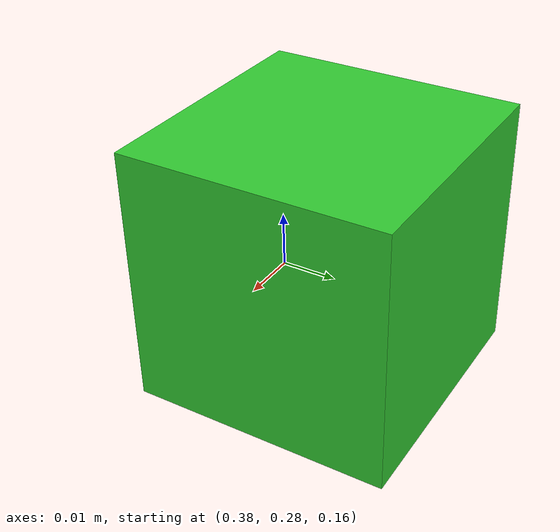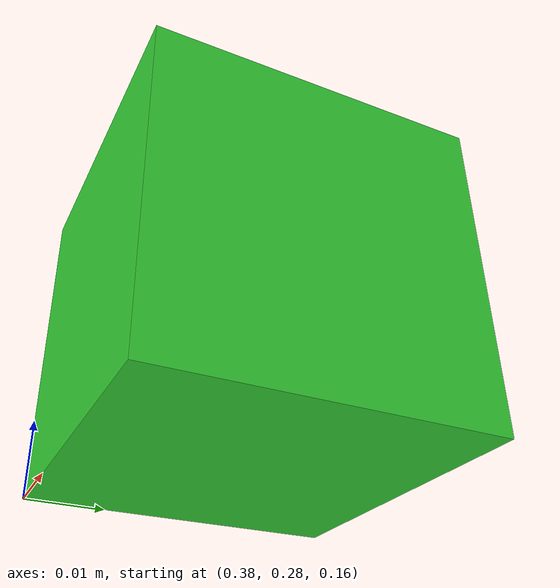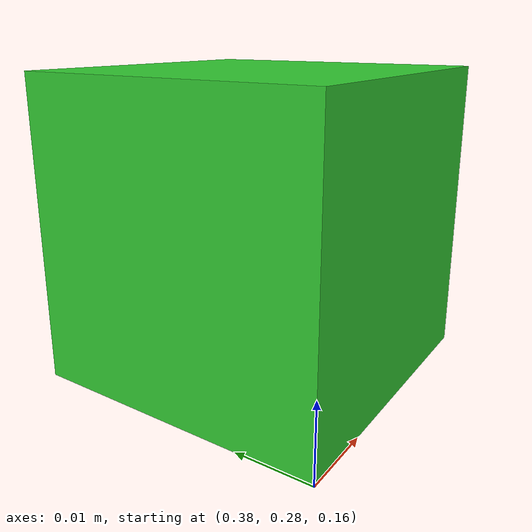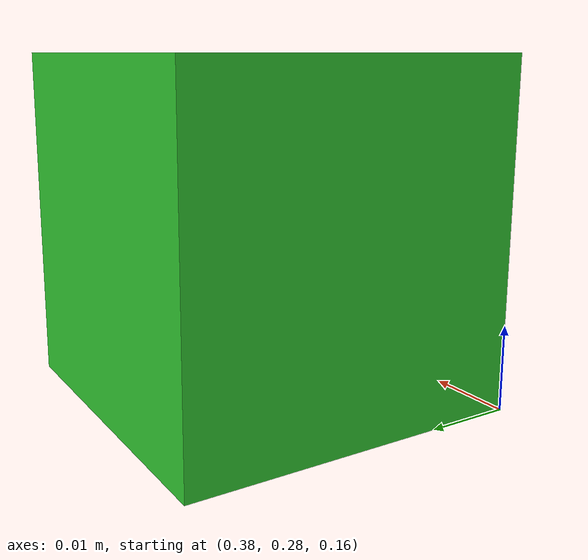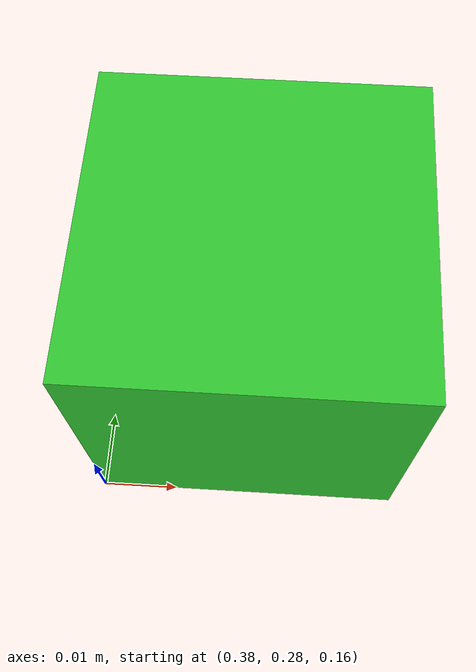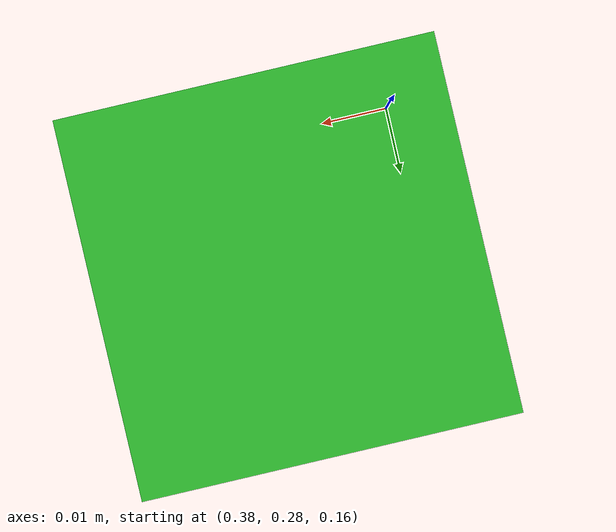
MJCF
<mujoco model="colored_cubes">
    <compiler angle="radian"/>

    <asset>
        <material name="cube_red" rgba="1 0.2 0.2 1"/>
        <material name="cube_green" rgba="0.2 0.8 0.2 1"/>
    </asset>

    <worldbody>
        <!-- Cubo rojo -->

        <!-- Cubo verde -->
        <body name="green_cube" pos="0.4 0.3 0.18">
            <joint type="free"/>
            <geom name="green_cube" type="box" size="0.02 0.02 0.02" material="cube_green" mass="0.1"/>
        </body>
    </worldbody>
</mujoco>
